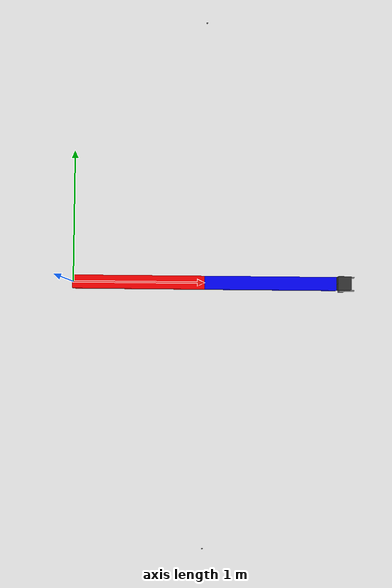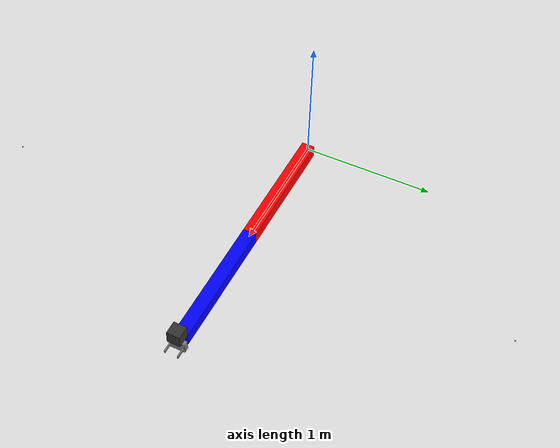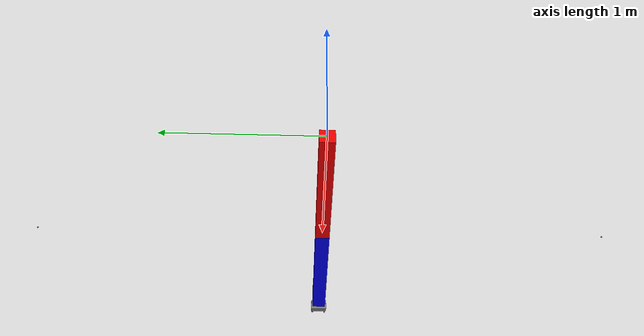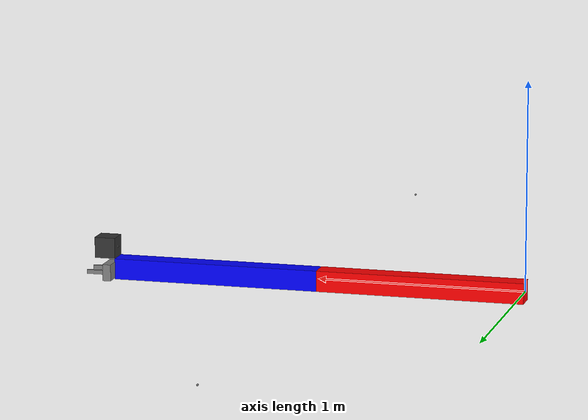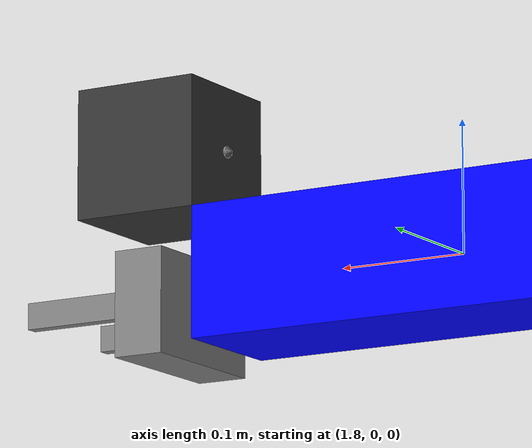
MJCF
<mujoco model="two_dof_robot">
  <compiler angle="radian" meshdir="assets/" texturedir="assets/"/>
  <worldbody>
    <body name="upperarm">
      <inertial pos="0.5 0 0" quat="0.5 0.5 0.5 0.5" mass="27" diaginertia="0.225 0.225 0.0225"/>
      <joint name="joint1" pos="0 0 0" axis="0 1 0" range="-3.14 3.14" actuatorfrcrange="-1000 1000" frictionloss="1.0" damping="2.0"/>
      <body name="forearm" pos="1 0 0" gravcomp="1.0">
        <inertial pos="0.509818 0 -0.000363636" quat="0.49615 0.503821 0.503821 0.49615" mass="27.5" diaginertia="0.369345 0.36923 0.023615"/>
        <joint name="joint2" pos="0 0 0" axis="0 1 0" range="-3.14 3.14" actuatorfrcrange="-1000 1000"/>
        <body name="gripper_left_finger" pos="1.04 0.05 -0.02" quat="0.707105 0 0.707108 0">
          <inertial pos="0 0 0.05" mass="0.1" diaginertia="0.0001 0.0001 1e-05"/>
          <joint name="gripper_left_finger_joint" pos="0 0 0" axis="0 1 0" type="slide" range="-0.045 0.005" actuatorfrcrange="-50 50"/>
          <geom size="0.01 0.005 0.05" pos="0 0 0.05" type="box" class="collision"/>
          <geom size="0.01 0.005 0.05" pos="0 0 0.05" type="box" class="visual"/>
          <site name="gripper_left_finger" pos="0 0 0" quat="1.0 0 0 0"/>
        </body>
        <body name="gripper_right_finger" pos="1.04 -0.05 -0.02" quat="0.707105 0 0.707108 0">
          <inertial pos="0 0 0.05" mass="0.1" diaginertia="0.0001 0.0001 1e-05"/>
          <joint name="gripper_right_finger_joint" pos="0 0 0" axis="0 1 0" type="slide" range="-0.005 0.045" actuatorfrcrange="-50 50"/>
          <geom size="0.01 0.005 0.05" pos="0 0 0.05" type="box" class="collision"/>
          <geom size="0.01 0.005 0.05" pos="0 0 0.05" type="box" class="visual"/>
          <site name="gripper_right_finger" pos="0 0 0" quat="1.0 0 0 0"/>
        </body>
        <geom size="0.5 0.05 0.05" pos="0.5 0 0" type="box" class="collision"/>
        <geom size="0.5 0.05 0.05" pos="0.5 0 0" type="box" rgba="0 0 1 1" class="visual"/>
        <geom size="0.04 0.06 0.02" pos="1.04 0 -0.02" quat="0.707105 0 0.707108 0" type="box" class="collision"/>
        <geom size="0.04 0.06 0.02" pos="1.04 0 -0.02" quat="0.707105 0 0.707108 0" type="box" class="visual"/>
        <geom size="0.05 0.05 0.05" pos="1.05 0 0.1" type="box" class="collision"/>
        <geom size="0.05 0.05 0.05" pos="1.05 0 0.1" type="box" rgba="0.2 0.2 0.2 1" class="visual"/>
        <site name="forearm" pos="0 0 0" quat="1.0 0 0 0"/>
        <site name="ee_link" pos="1.0 0 0" quat="1.0 0 0 0"/>
        <site name="gripper_base" pos="1.04 0 -0.02" quat="0.7071054825112363 0 0.7071080798594737 0"/>
        <site name="camera_link" pos="1.05 0 0.1" quat="1.0 0 0 0"/>
        <site name="camera_color_frame" pos="1.0 0 0.1" quat="1.0 0 0 0"/>
        <site name="camera_color_optical_frame" pos="1.0 0 0.1" quat="-0.49999816339744824 0.4999999999966268 0.5000018366025517 -0.4999999999966268"/>
        <site name="camera_color_mujoco_frame" pos="1.0 0 0.1" quat="0.5000006633911983 0.4999974999995599 0.49999933659630164 0.5000024999995599"/>
        <camera name="camera" fovy="58" mode="fixed" resolution="640 480" pos="1.0 0 0.1" quat="-0.4999999999966268 -0.49999816339744824 -0.4999999999966268 -0.5000018366025517"/>
      </body>
      <geom size="0.5 0.05 0.05" pos="0.5 0 0" type="box" class="collision"/>
      <geom size="0.5 0.05 0.05" pos="0.5 0 0" type="box" rgba="1 0 0 1" class="visual"/>
      <site name="upperarm" pos="0 0 0" quat="1.0 0 0 0"/>
    </body>
    <site name="world" pos="0 0 0" quat="1.0 0 0 0"/>
    <site name="base" pos="0 0 0" quat="1.0 0 0 0"/>
    <site name="lidar_sensor_frame" pos="1.0 2.0 0" quat="0.7071054825112363 0 0 -0.7071080798594737"/>
    <site name="3d_lidar_sensor_frame" pos="1.0 -2.0 0" quat="0.7071054825112363 0 0 0.7071080798594737"/>
  </worldbody>
  <option integrator="implicitfast"/>
  <default>
    <default class="visual">
      <geom group="2" type="mesh" contype="0" conaffinity="0"/>
    </default>
    <default class="collision">
      <geom group="3" type="mesh"/>
    </default>
  </default>
  <actuator>
    <motor name="joint1_motor" joint="joint1" gear="1"/>
    <motor name="joint2_motor" joint="joint2" gear="1"/>
    <position tendon="split" name="gripper_left_finger_joint" kp="1000" dampratio="3.0" ctrlrange="-0.09 0.005"/>
  </actuator>
  <tendon>
    <fixed name="split">
      <joint joint="gripper_left_finger_joint" coef="0.5"/>
      <joint joint="gripper_right_finger_joint" coef="-0.5"/>
    </fixed>
  </tendon>
  <equality>
    <joint joint1="gripper_left_finger_joint" joint2="gripper_right_finger_joint" polycoef="0 -1 0 0 0" solimp="0.95 0.99 0.001" solref="0.005 1"/>
  </equality>
  <extension>
    <plugin plugin="mujoco.plugin.lidar">
      <instance name="2d_lidar">
        <config key="resolution" value="24 1"/>
        <config key="azimuth_range" value="-0.3 0.3"/>
        <config key="elevation_range" value="0.0"/>
        <config key="max_range" value="10.0"/>
        <config key="min_range" value="0.0"/>
        <config key="update_rate" value="0.1"/>
      </instance>
    </plugin>
  </extension>
  <sensor>
    <plugin name="2d_lidar" instance="2d_lidar" objtype="site" objname="lidar_sensor_frame"/>
  </sensor>
  <extension>
    <plugin plugin="mujoco.plugin.lidar">
      <instance name="3d_lidar">
        <config key="resolution" value="24 24"/>
        <config key="azimuth_range" value="-0.3 0.3"/>
        <config key="elevation_range" value="-0.3 0.3"/>
        <config key="max_range" value="10.0"/>
        <config key="min_range" value="0.0"/>
        <config key="update_rate" value="1.0"/>
      </instance>
    </plugin>
  </extension>
  <sensor>
    <plugin name="3d_lidar" instance="3d_lidar" objtype="site" objname="3d_lidar_sensor_frame"/>
  </sensor>
</mujoco>
